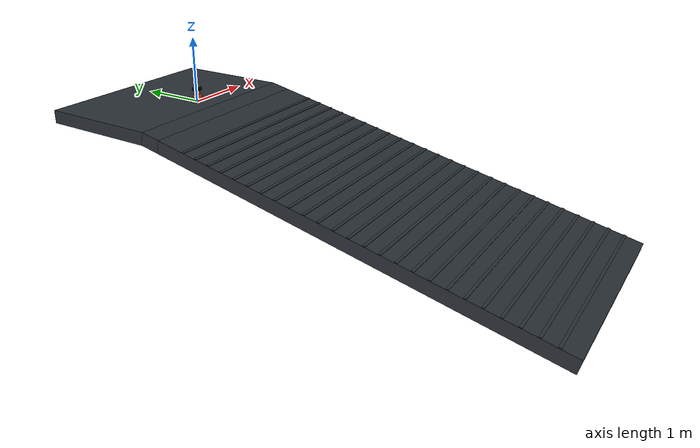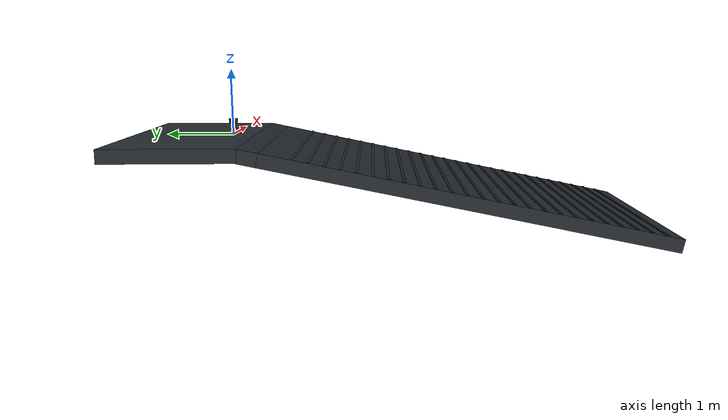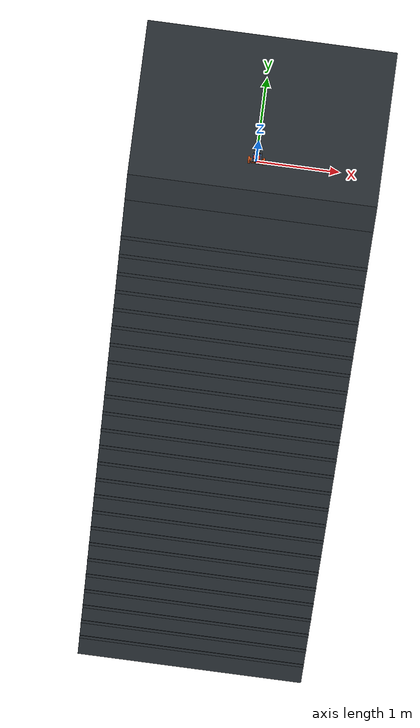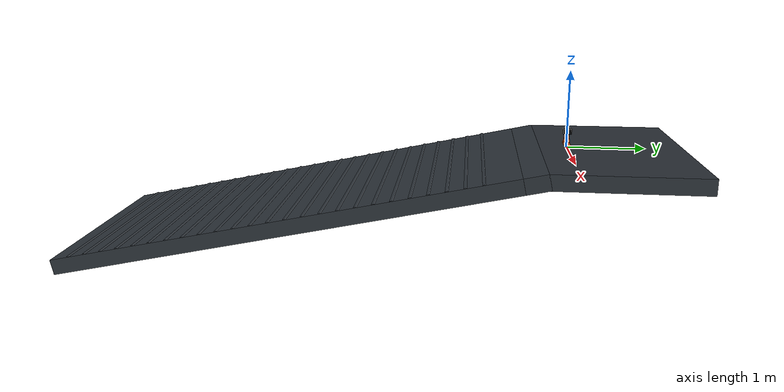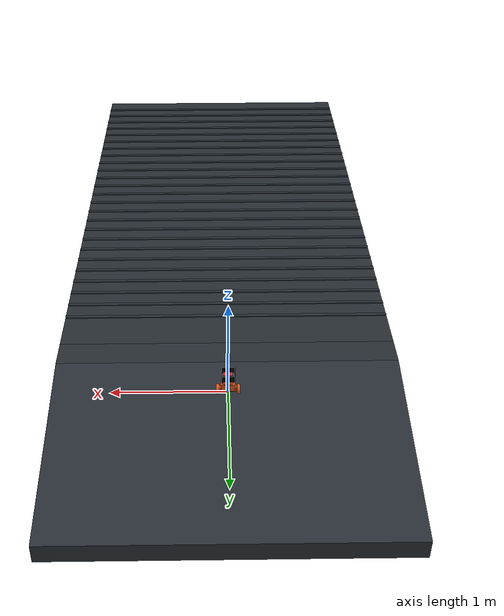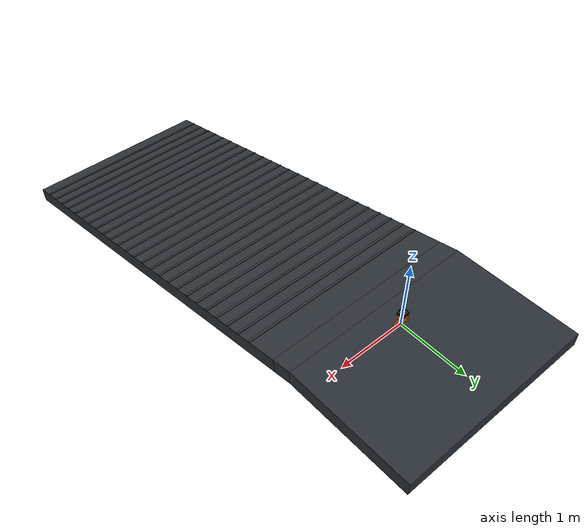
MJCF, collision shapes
<mujoco model="Stage4B rtrain_057_m12p0">
  <compiler angle="radian" meshdir="../../../../assets/upstream_local" />
  <option timestep="0.001" integrator="implicitfast" gravity="0 0 -9.81" />
  <statistic center="0 0 0.10" extent="0.35" />
  <default>
    <default class="visual">
      <geom contype="0" conaffinity="0" group="2" />
    </default>
    <default class="collision">
      <geom group="3" rgba="0.85 0.35 0.12 0.25" solref="0.005 1" solimp="0.9 0.95 0.001" />
    </default>
  </default>
  <asset>
    <texture name="ground_tex" type="2d" builtin="checker" rgb1="0.22 0.25 0.28" rgb2="0.12 0.14 0.16" width="256" height="256" />
    <material name="ground_mat" texture="ground_tex" texrepeat="4 4" reflectance="0.15" />
    <mesh name="main_frame_mesh" file="main_frame.stl" scale="0.001 0.001 0.001" />
    <mesh name="wheel_base_mesh" file="wheel_base.stl" scale="0.001 0.001 0.001" />
    <mesh name="cover_mesh" file="cover.stl" scale="0.001 0.001 0.001" />
    <mesh name="motor_left_mesh" file="motor_left.stl" scale="0.001 0.001 0.001" />
    <mesh name="motor_right_mesh" file="motor_right.stl" scale="0.001 0.001 0.001" />
    <mesh name="mc33926_mesh" file="mc33926.stl" scale="0.001 0.001 0.001" />
    <mesh name="wheel_mesh" file="wheel.stl" scale="0.001 0.001 0.001" />
    <mesh name="adapter_left_mesh" file="adapter_left.stl" scale="0.001 0.001 0.001" />
    <mesh name="adapter_right_mesh" file="adapter_right.stl" scale="0.001 0.001 0.001" />
  </asset>
  <worldbody>
    <light pos="0 -0.5 0.8" dir="0 0.6 -1" diffuse="0.8 0.8 0.8" />
    <geom name="terrain_flat" type="box" pos="0 0.575 -0.1" size="1.5 0.925 0.1" material="ground_mat" friction="0.98463909 0.005 0.0001" condim="3" />
    <geom name="terrain_transition" type="box" pos="0 -0.475930971028 -0.129001513696" euler="0.209439510239 0 0" size="1.5 0.15 0.1" material="ground_mat" friction="0.98463909 0.005 0.0001" condim="3" />
    <geom name="terrain_constant_grade" type="box" pos="0 -3.55709591334 -0.783923339772" euler="0.209439510239 0 0" size="1.5 3 0.1" material="ground_mat" friction="0.98463909 0.005 0.0001" condim="3" />
    <geom name="terrain_rough_00" type="box" pos="0 -1.08454759011 -0.151526049285" euler="0.209439510239 0 0" size="1.5 0.0193104483883 0.00450618988876" material="ground_mat" friction="0.98463909 0.005 0.0001" condim="3" />
    <geom name="terrain_rough_01" type="box" pos="0 -1.30045943276 -0.197419528183" euler="0.209439510239 0 0" size="1.5 0.0193104483883 0.00450618988876" material="ground_mat" friction="0.98463909 0.005 0.0001" condim="3" />
    <geom name="terrain_rough_02" type="box" pos="0 -1.51637127541 -0.243313007081" euler="0.209439510239 0 0" size="1.5 0.0193104483883 0.00450618988876" material="ground_mat" friction="0.98463909 0.005 0.0001" condim="3" />
    <geom name="terrain_rough_03" type="box" pos="0 -1.73228311806 -0.289206485979" euler="0.209439510239 0 0" size="1.5 0.0193104483883 0.00450618988876" material="ground_mat" friction="0.98463909 0.005 0.0001" condim="3" />
    <geom name="terrain_rough_04" type="box" pos="0 -1.94819496072 -0.335099964877" euler="0.209439510239 0 0" size="1.5 0.0193104483883 0.00450618988876" material="ground_mat" friction="0.98463909 0.005 0.0001" condim="3" />
    <geom name="terrain_rough_05" type="box" pos="0 -2.16410680337 -0.380993443775" euler="0.209439510239 0 0" size="1.5 0.0193104483883 0.00450618988876" material="ground_mat" friction="0.98463909 0.005 0.0001" condim="3" />
    <geom name="terrain_rough_06" type="box" pos="0 -2.38001864602 -0.426886922673" euler="0.209439510239 0 0" size="1.5 0.0193104483883 0.00450618988876" material="ground_mat" friction="0.98463909 0.005 0.0001" condim="3" />
    <geom name="terrain_rough_07" type="box" pos="0 -2.59593048867 -0.47278040157" euler="0.209439510239 0 0" size="1.5 0.0193104483883 0.00450618988876" material="ground_mat" friction="0.98463909 0.005 0.0001" condim="3" />
    <geom name="terrain_rough_08" type="box" pos="0 -2.81184233132 -0.518673880468" euler="0.209439510239 0 0" size="1.5 0.0193104483883 0.00450618988876" material="ground_mat" friction="0.98463909 0.005 0.0001" condim="3" />
    <geom name="terrain_rough_09" type="box" pos="0 -3.02775417398 -0.564567359366" euler="0.209439510239 0 0" size="1.5 0.0193104483883 0.00450618988876" material="ground_mat" friction="0.98463909 0.005 0.0001" condim="3" />
    <geom name="terrain_rough_10" type="box" pos="0 -3.24366601663 -0.610460838264" euler="0.209439510239 0 0" size="1.5 0.0193104483883 0.00450618988876" material="ground_mat" friction="0.98463909 0.005 0.0001" condim="3" />
    <geom name="terrain_rough_11" type="box" pos="0 -3.45957785928 -0.656354317162" euler="0.209439510239 0 0" size="1.5 0.0193104483883 0.00450618988876" material="ground_mat" friction="0.98463909 0.005 0.0001" condim="3" />
    <geom name="terrain_rough_12" type="box" pos="0 -3.67548970193 -0.70224779606" euler="0.209439510239 0 0" size="1.5 0.0193104483883 0.00450618988876" material="ground_mat" friction="0.98463909 0.005 0.0001" condim="3" />
    <geom name="terrain_rough_13" type="box" pos="0 -3.89140154458 -0.748141274958" euler="0.209439510239 0 0" size="1.5 0.0193104483883 0.00450618988876" material="ground_mat" friction="0.98463909 0.005 0.0001" condim="3" />
    <geom name="terrain_rough_14" type="box" pos="0 -4.10731338723 -0.794034753856" euler="0.209439510239 0 0" size="1.5 0.0193104483883 0.00450618988876" material="ground_mat" friction="0.98463909 0.005 0.0001" condim="3" />
    <geom name="terrain_rough_15" type="box" pos="0 -4.32322522989 -0.839928232754" euler="0.209439510239 0 0" size="1.5 0.0193104483883 0.00450618988876" material="ground_mat" friction="0.98463909 0.005 0.0001" condim="3" />
    <geom name="terrain_rough_16" type="box" pos="0 -4.53913707254 -0.885821711652" euler="0.209439510239 0 0" size="1.5 0.0193104483883 0.00450618988876" material="ground_mat" friction="0.98463909 0.005 0.0001" condim="3" />
    <geom name="terrain_rough_17" type="box" pos="0 -4.75504891519 -0.931715190549" euler="0.209439510239 0 0" size="1.5 0.0193104483883 0.00450618988876" material="ground_mat" friction="0.98463909 0.005 0.0001" condim="3" />
    <geom name="terrain_rough_18" type="box" pos="0 -4.97096075784 -0.977608669447" euler="0.209439510239 0 0" size="1.5 0.0193104483883 0.00450618988876" material="ground_mat" friction="0.98463909 0.005 0.0001" condim="3" />
    <geom name="terrain_rough_19" type="box" pos="0 -5.18687260049 -1.02350214835" euler="0.209439510239 0 0" size="1.5 0.0193104483883 0.00450618988876" material="ground_mat" friction="0.98463909 0.005 0.0001" condim="3" />
    <geom name="terrain_rough_20" type="box" pos="0 -5.40278444314 -1.06939562724" euler="0.209439510239 0 0" size="1.5 0.0193104483883 0.00450618988876" material="ground_mat" friction="0.98463909 0.005 0.0001" condim="3" />
    <geom name="terrain_rough_21" type="box" pos="0 -5.6186962858 -1.11528910614" euler="0.209439510239 0 0" size="1.5 0.0193104483883 0.00450618988876" material="ground_mat" friction="0.98463909 0.005 0.0001" condim="3" />
    <geom name="terrain_rough_22" type="box" pos="0 -5.83460812845 -1.16118258504" euler="0.209439510239 0 0" size="1.5 0.0193104483883 0.00450618988876" material="ground_mat" friction="0.98463909 0.005 0.0001" condim="3" />
    <geom name="terrain_rough_23" type="box" pos="0 -6.0505199711 -1.20707606394" euler="0.209439510239 0 0" size="1.5 0.0193104483883 0.00450618988876" material="ground_mat" friction="0.98463909 0.005 0.0001" condim="3" />
    <geom name="terrain_rough_24" type="box" pos="0 -6.26643181375 -1.25296954283" euler="0.209439510239 0 0" size="1.5 0.0193104483883 0.00450618988876" material="ground_mat" friction="0.98463909 0.005 0.0001" condim="3" />
    <body name="chassis" pos="0 0 0.043">
      <freejoint name="root" />
      <inertial pos="0.0001592717873 -0.001394466535 0.03368627387" mass="0.8173706489" fullinertia="0.0009508052638 0.001636345835 0.0009938057434 -1.163464906e-07 -4.840496598e-06 3.454944565e-05" />
      <geom name="main_frame_visual" class="visual" type="mesh" mesh="main_frame_mesh" rgba="0.12 0.42 0.72 1" />
      <geom name="wheel_base_visual" class="visual" type="mesh" mesh="wheel_base_mesh" rgba="0.95 0.50 0.10 1" />
      <geom name="cover_visual" class="visual" type="mesh" mesh="cover_mesh" rgba="0.18 0.72 0.32 0.72" />
      <geom name="motor_left_visual" class="visual" type="mesh" mesh="motor_left_mesh" rgba="0.45 0.47 0.50 1" />
      <geom name="motor_right_visual" class="visual" type="mesh" mesh="motor_right_mesh" rgba="0.45 0.47 0.50 1" />
      <geom name="mc33926_visual" class="visual" type="mesh" mesh="mc33926_mesh" rgba="0.08 0.36 0.18 1" />
      <geom name="battery_1_visual" class="visual" type="box" pos="0 -0.012 0.038" size="0.035 0.007 0.025" rgba="0.15 0.25 0.75 1" />
      <geom name="battery_2_visual" class="visual" type="box" pos="0 0.012 0.038" size="0.035 0.007 0.025" rgba="0.15 0.25 0.75 1" />
      <geom name="electronics_lump_visual" class="visual" type="box" pos="0 -0.024 0.067" size="0.035 0.006 0.0425" rgba="0.10 0.42 0.20 0.65" />
      <geom name="wheel_base_collision" class="collision" type="box" pos="0 0.0005 0.0042" size="0.074 0.0201 0.0198" />
      <geom name="lower_chassis_collision" class="collision" type="box" pos="0.001 -0.0015 0.038" size="0.0595 0.0325 0.038" />
      <geom name="upper_chassis_collision" class="collision" type="capsule" fromto="-0.024 -0.0015 0.096 0.026 -0.0015 0.096" size="0.033" />
      <geom name="basket_floor" class="collision" type="box" pos="0 0 0.137" size="0.055 0.052 0.003" friction="0.024 0.005 0.0001" rgba="0.18 0.30 0.48 0.65" />
      <geom name="basket_front_wall" class="collision" type="box" pos="0 -0.052 0.170" size="0.055 0.003 0.033" friction="0.024 0.005 0.0001" rgba="0 0 0 0" />
      <geom name="basket_rear_wall" class="collision" type="box" pos="0 0.052 0.170" size="0.055 0.003 0.033" friction="0.024 0.005 0.0001" rgba="0 0 0 0" />
      <geom name="basket_left_wall" class="collision" type="box" pos="-0.055 0 0.170" size="0.003 0.052 0.033" friction="0.024 0.005 0.0001" rgba="0 0 0 0" />
      <geom name="basket_right_wall" class="collision" type="box" pos="0.055 0 0.170" size="0.003 0.052 0.033" friction="0.024 0.005 0.0001" rgba="0 0 0 0" />
      <site name="imu_site" type="box" pos="0 0 0.020" quat="1 0 0 0" size="0.004 0.003 0.001" rgba="1 0.15 0.05 1" />
      <body name="left_wheel" pos="-0.0885 0 0">
        <joint name="left_wheel_hinge" type="hinge" axis="1 0 0" damping="0.002" frictionloss="0.002" />
        <inertial pos="0.001407549168 -2.310217342e-08 4.024972882e-05" mass="0.1051" fullinertia="8.559060347e-05 4.760138372e-05 4.763051958e-05 2.677568832e-11 -3.525425309e-08 -1.463149106e-11" />
        <geom name="left_wheel_visual" class="visual" type="mesh" mesh="wheel_mesh" rgba="0.04 0.05 0.06 1" />
        <geom name="left_adapter_visual" class="visual" type="mesh" mesh="adapter_left_mesh" rgba="0.12 0.48 0.82 1" />
        <geom name="left_wheel_collision" class="collision" type="cylinder" size="0.042 0.012" quat="0.7071067812 0 0.7071067812 0" friction="0.98463909 0.005 0.0001" />
      </body>
      <body name="right_wheel" pos="0.0885 0 0">
        <joint name="right_wheel_hinge" type="hinge" axis="1 0 0" damping="0.002" frictionloss="0.002" />
        <inertial pos="-0.001407437868 -2.310217342e-08 -4.019113045e-05" mass="0.1051" fullinertia="8.559060397e-05 4.760141714e-05 4.763055251e-05 -2.601653908e-11 -3.526339188e-08 1.57007511e-11" />
        <geom name="right_wheel_visual" class="visual" type="mesh" mesh="wheel_mesh" rgba="0.04 0.05 0.06 1" />
        <geom name="right_adapter_visual" class="visual" type="mesh" mesh="adapter_right_mesh" rgba="0.12 0.48 0.82 1" />
        <geom name="right_wheel_collision" class="collision" type="cylinder" size="0.042 0.012" quat="0.7071067812 0 0.7071067812 0" friction="0.98463909 0.005 0.0001" />
      </body>
    </body>
    <body name="moving_payload" pos="0 0 0.204">
      <freejoint name="moving_payload_free" />
      <inertial pos="0 0 0" mass="0.20" diaginertia="0.0000533333333 0.0001333333333 0.0001333333333" />
      <geom name="moving_payload_collision" class="collision" type="box" size="0.040 0.020 0.020" friction="0.024 0.005 0.0001" rgba="0.78 0.18 0.12 1" />
    </body>
  </worldbody>
  <actuator>
    <motor name="left_wheel_torque" joint="left_wheel_hinge" gear="1" ctrllimited="true" ctrlrange="-0.63 0.63" forcelimited="true" forcerange="-0.63 0.63" />
    <motor name="right_wheel_torque" joint="right_wheel_hinge" gear="1" ctrllimited="true" ctrlrange="-0.63 0.63" forcelimited="true" forcerange="-0.63 0.63" />
  </actuator>
  <sensor>
    <accelerometer name="imu_accelerometer" site="imu_site" />
    <gyro name="imu_gyro" site="imu_site" />
    <jointpos name="left_wheel_angle" joint="left_wheel_hinge" />
    <jointpos name="right_wheel_angle" joint="right_wheel_hinge" />
  </sensor>
  <keyframe>
    <key name="upright" qpos="0 0 0.043 1 0 0 0 0 0 0 0 0.204 1 0 0 0" />
  </keyframe>
</mujoco>
